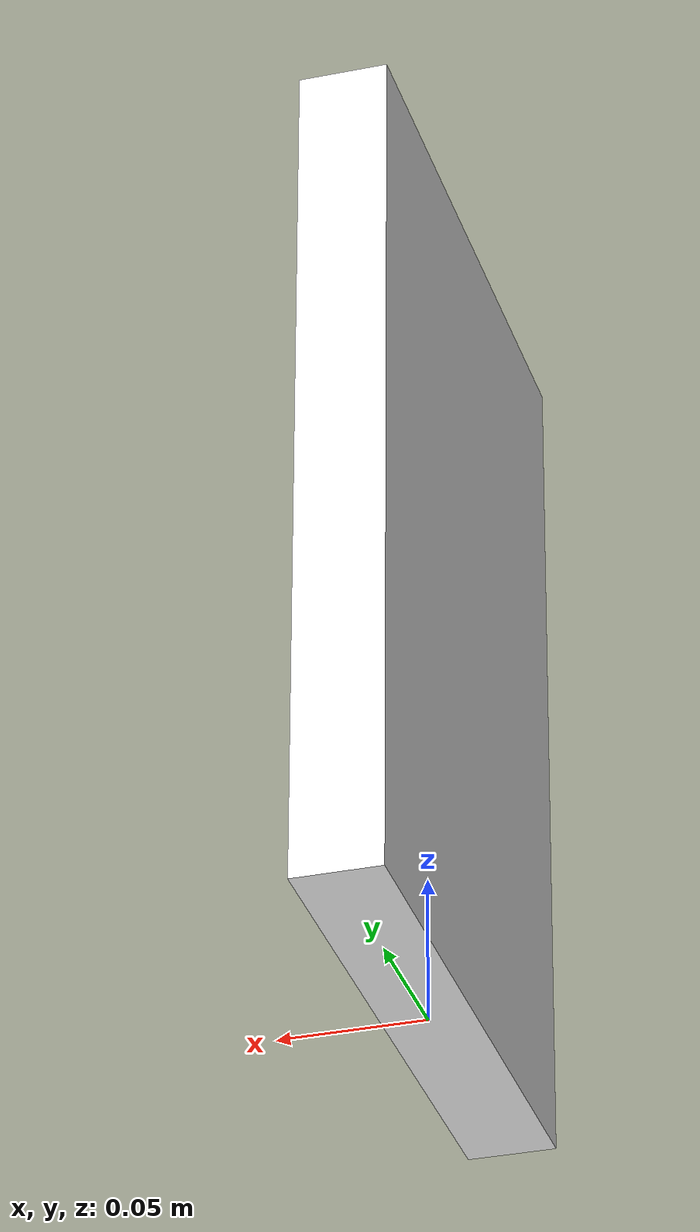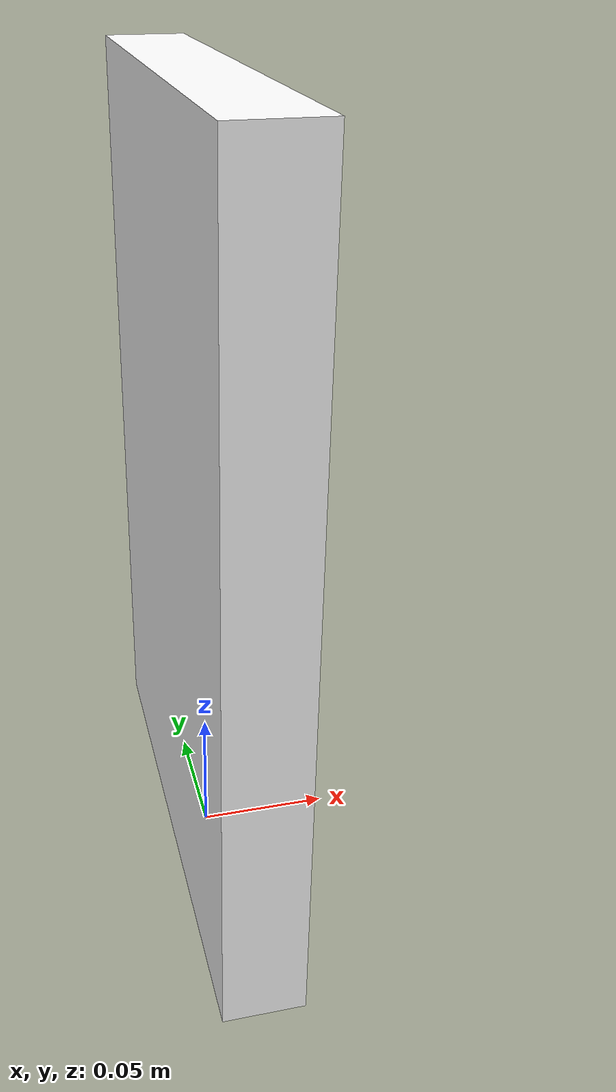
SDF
<?xml version="1.0"?>
<sdf version="1.7">
  <model name="phine_gNB">
    <static>false</static>
    <link name="phine_cell">
      <pose>0 0 0.15 0 0 0</pose>

      <inertial>
        <mass>1.0</mass>
        <inertia>
          <ixx>0.001</ixx>
          <ixy>0.0</ixy>
          <ixz>0.0</ixz>
          <iyy>0.001</iyy>
          <iyz>0.0</iyz>
          <izz>0.001</izz>
        </inertia>
      </inertial>

      <collision name="collision">
        <geometry>
          <box>
            <size>0.03 0.2 0.3</size>
          </box>
        </geometry>
      </collision>

      <visual name="visual">
        <geometry>
          <box>
            <size>0.03 0.2 0.3</size>
          </box>
        </geometry>
        <material>
          <ambient>1 1 1 1</ambient>
          <diffuse>1 1 1 1</diffuse>
          <specular>1 1 1 1</specular>
        </material>
      </visual>

      <gravity>0</gravity>
    </link>
  </model>
</sdf>
